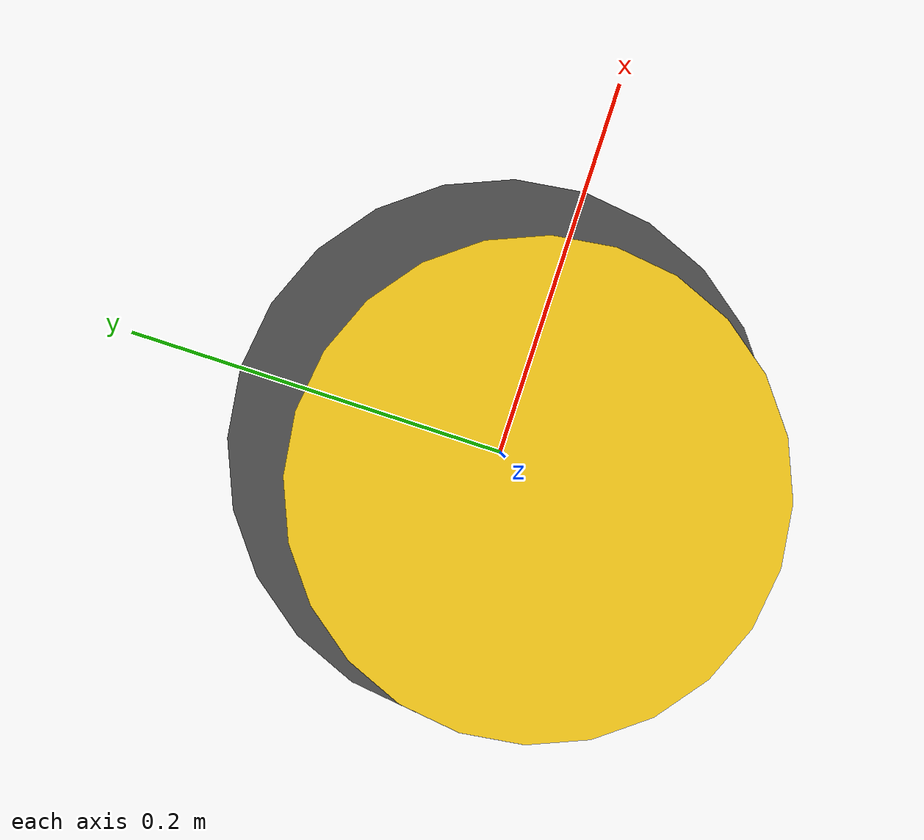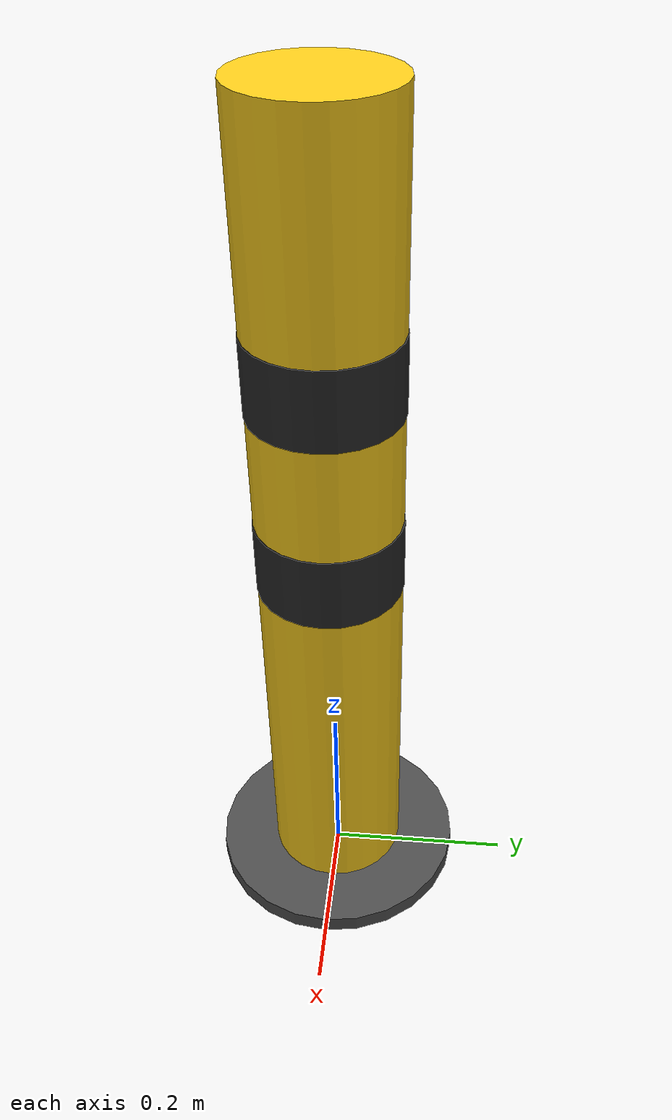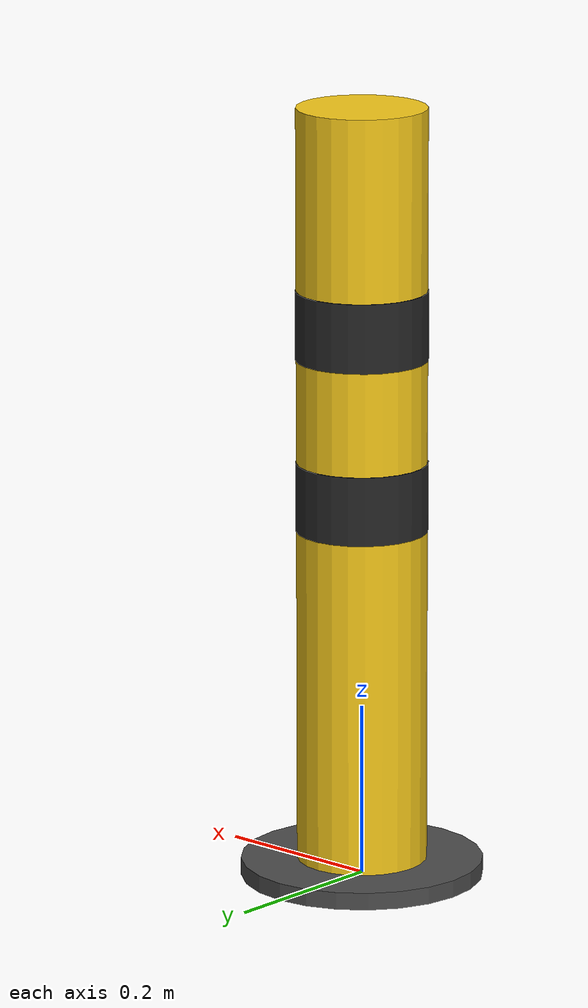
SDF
<?xml version="1.0" ?>
<sdf version="1.6">
  <model name="safety_bollard">
    <static>true</static>
    <link name="bollard_link">
      <!-- Base flange -->
      <visual name="flange">
        <pose>0 0 0.01 0 0 0</pose>
        <geometry><cylinder><radius>0.14</radius><length>0.02</length></cylinder></geometry>
        <material>
          <ambient>0.2 0.2 0.2 1.0</ambient>
          <diffuse>0.3 0.3 0.3 1.0</diffuse>
        </material>
      </visual>

      <!-- Main yellow post -->
      <visual name="post">
        <pose>0 0 0.45 0 0 0</pose>
        <geometry><cylinder><radius>0.075</radius><length>0.90</length></cylinder></geometry>
        <material>
          <ambient>0.95 0.75 0.05 1.0</ambient>
          <diffuse>0.98 0.80 0.10 1.0</diffuse>
        </material>
      </visual>

      <!-- Black warning stripe 1 -->
      <visual name="stripe1">
        <pose>0 0 0.65 0 0 0</pose>
        <geometry><cylinder><radius>0.076</radius><length>0.08</length></cylinder></geometry>
        <material>
          <ambient>0.1 0.1 0.1 1.0</ambient>
          <diffuse>0.15 0.15 0.15 1.0</diffuse>
        </material>
      </visual>

      <!-- Black warning stripe 2 -->
      <visual name="stripe2">
        <pose>0 0 0.45 0 0 0</pose>
        <geometry><cylinder><radius>0.076</radius><length>0.08</length></cylinder></geometry>
        <material>
          <ambient>0.1 0.1 0.1 1.0</ambient>
          <diffuse>0.15 0.15 0.15 1.0</diffuse>
        </material>
      </visual>

      <collision name="col_bollard">
        <pose>0 0 0.45 0 0 0</pose>
        <geometry><cylinder><radius>0.08</radius><length>0.90</length></cylinder></geometry>
      </collision>
    </link>
  </model>
</sdf>
